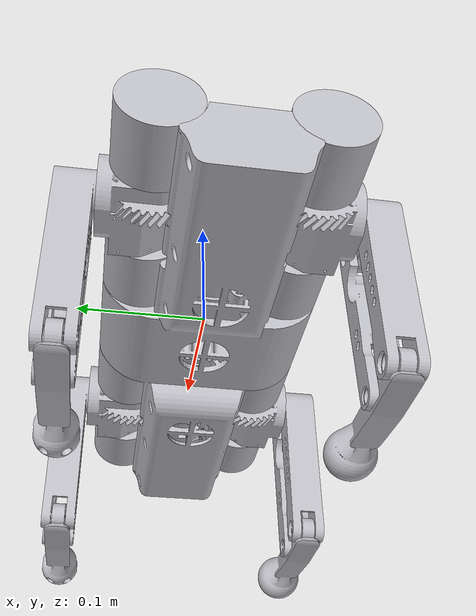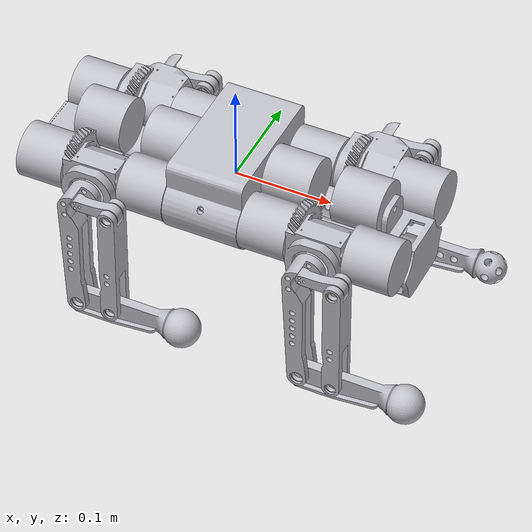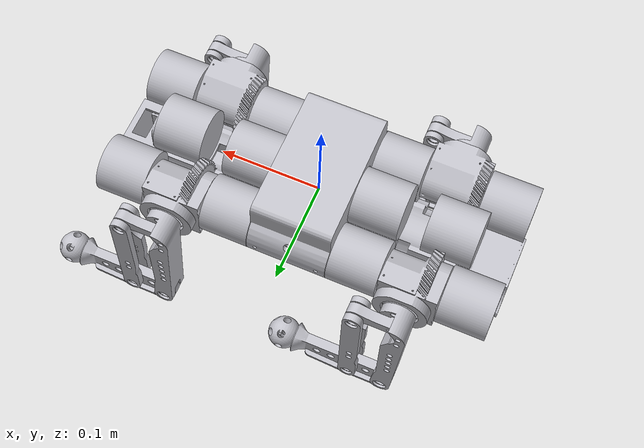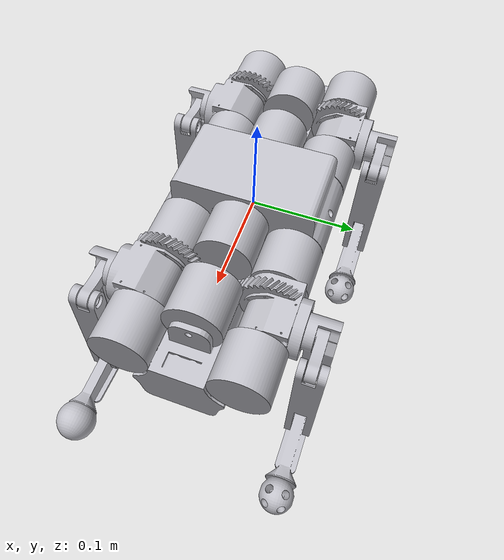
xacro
<?xml version="1.0"?>
<robot name="URDF" xmlns:xacro="http://www.ros.org/wiki/xacro">

  <xacro:include filename="/home/tomasz/dev/QuadBotNG/sim/urdf/URDF.gazebo" />
  <link name="base_link">
    <inertial>
      <origin xyz="0.00014024235087096401 -0.0003890538127367371 -0.019060892954127925" rpy="0 0 0" />
      <mass value="0.5621563017705747" />
      <inertia ixx="0.001155" iyy="0.00653" izz="0.006946" ixy="4e-06" iyz="2e-06" ixz="-2.4e-05" />
    </inertial>
    <visual>
      <origin xyz="0 0 0" rpy="0 0 0" />
      <geometry>
        <mesh filename="/home/tomasz/dev/QuadBotNG/sim/meshes/base_link.stl"
          scale="0.001 0.001 0.001" />
      </geometry>
      <material name="silver" />
    </visual>
    <collision>
      <origin xyz="0 0 0" rpy="0 0 0" />
      <geometry>
        <mesh filename="/home/tomasz/dev/QuadBotNG/sim/meshes/base_link_c.stl"
          scale="0.001 0.001 0.001" />
      </geometry>
    </collision>

  </link>

  <link name="drives_1">
    <inertial>
      <origin xyz="-0.03951765517329959 1.2719094139211486e-09 -0.012055286127708453" rpy="0 0 0" />
      <mass value="3.702587577963783" />
      <inertia ixx="0.008603" iyy="0.056229" izz="0.062893" ixy="0.0" iyz="0.0" ixz="-0.0" />
    </inertial>
    <visual>
      <origin xyz="-0.039505 -0.0 -0.018083" rpy="0 0 0" />
      <geometry>
        <mesh filename="/home/tomasz/dev/QuadBotNG/sim/meshes/drives_1.stl"
          scale="0.001 0.001 0.001" />
      </geometry>
      <material name="silver" />
    </visual>
  </link>

  <xacro:macro name="leg" params="name prefix move_x reflect_y">
    <link name="shoulder_${name}_1">
      <inertial>
        <origin xyz="0.07305887126794519 ${reflect_y * -0.006366818449876278} 1.737939750193092e-05"
          rpy="0 0 0" />
        <mass value="0.0687982302950686" />
        <inertia ixx="4.5e-05" iyy="4.9e-05" izz="5e-05" ixy="${reflect_y * 7e-06}" iyz="0.0"
          ixz="0.0" />
      </inertial>
      <visual>
        <origin xyz="-0.039006 ${reflect_y * 0.053} -0.0" rpy="0 0 0" />
        <geometry>
          <mesh filename="/home/tomasz/dev/QuadBotNG/sim/meshes/shoulder_${prefix}_1.stl"
            scale="0.001 0.001 0.001" />
        </geometry>
        <material name="silver" />
      </visual>
      <collision>
        <origin xyz="-0.039006 ${reflect_y * 0.053} -0.0" rpy="0 0 0" />
        <geometry>
          <mesh
            filename="/home/tomasz/dev/QuadBotNG/sim/meshes/shoulder_${prefix}_1_c.stl"
            scale="0.001 0.001 0.001" />
        </geometry>
      </collision>

    </link>

    <link name="arm_main_${name}_1">
      <inertial>
        <origin xyz="-0.004247618304285272 ${reflect_y *-0.014187952596475387} -0.04886253447598682"
          rpy="0 0 0" />
        <mass value="0.047281594844868054" />
        <inertia ixx="7.8e-05" iyy="7.7e-05" izz="6e-06" ixy="-0.0" iyz="${reflect_y *-2e-06}"
          ixz="2e-06" />
      </inertial>
      <visual>
        <origin xyz="-0.118706 ${reflect_y *0.0875} -0.0" rpy="0 0 0" />
        <geometry>
          <mesh filename="/home/tomasz/dev/QuadBotNG/sim/meshes/arm_main_${prefix}_1.stl"
            scale="0.001 0.001 0.001" />
        </geometry>
        <material name="silver" />
      </visual>
      <collision>
        <origin xyz="-0.118706 ${reflect_y *0.0875} -0.0" rpy="0 0 0" />
        <geometry>
          <mesh
            filename="/home/tomasz/dev/QuadBotNG/sim/meshes/arm_main_${prefix}_1_c.stl"
            scale="0.001 0.001 0.001" />
        </geometry>
      </collision>

    </link>

    <link name="arm_crank_${name}_1">
      <inertial>
        <origin xyz="0.01870365879895089 ${reflect_y *-0.01385715444565519} 9.569436468071744e-05"
          rpy="0 0 0" />
        <mass value="0.007002755420396213" />
        <inertia ixx="0.0" iyy="2e-06" izz="2e-06" ixy="0.0" iyz="0.0" ixz="-0.0" />
      </inertial>
      <visual>
        <origin xyz="-0.118706 ${reflect_y *0.0875} -0.0" rpy="0 0 0" />
        <geometry>
          <mesh filename="/home/tomasz/dev/QuadBotNG/sim/meshes/arm_crank_${prefix}_1.stl"
            scale="0.001 0.001 0.001" />
        </geometry>
        <material name="silver" />
      </visual>

    </link>

    <link name="arm_link_${name}_1">
      <inertial>
        <origin xyz="0.00114096544972489 ${reflect_y *-0.0013691619442786351} -0.05890529754921636"
          rpy="0 0 0" />
        <mass value="0.0331145638504204" />
        <inertia ixx="4.4e-05" iyy="4.3e-05" izz="4e-06" ixy="-0.0" iyz="0.0" ixz="-1e-06" />
      </inertial>
      <visual>
        <origin xyz="-0.153706 ${reflect_y *0.1026} -0.0" rpy="0 0 0" />
        <geometry>
          <mesh filename="/home/tomasz/dev/QuadBotNG/sim/meshes/arm_link_${prefix}_1.stl"
            scale="0.001 0.001 0.001" />
        </geometry>
        <material name="silver" />
      </visual>
    </link>

    <link name="arm_lower_${name}_1">
      <inertial>
        <origin xyz="0.06322127393693497 ${reflect_y *4.99720667845871e-07} -0.0019199942850988"
          rpy="0 0 0" />
        <mass value="0.03998924644154324" />
        <inertia ixx="3e-06" iyy="6e-05" izz="5.9e-05" ixy="-0.0" iyz="0.0" ixz="-2e-06" />
      </inertial>
      <visual>
        <origin xyz="-0.118702 ${reflect_y *0.1026} 0.119915" rpy="0 0 0" />
        <geometry>
          <mesh filename="/home/tomasz/dev/QuadBotNG/sim/meshes/arm_lower_${prefix}_1.stl"
            scale="0.001 0.001 0.001" />
        </geometry>
        <material name="silver" />
      </visual>
      <collision>
        <origin xyz="-0.118702 ${reflect_y *0.1026} 0.119915" rpy="0 0 0" />
        <geometry>
          <mesh
            filename="/home/tomasz/dev/QuadBotNG/sim/meshes/arm_lower_${prefix}_1_c.stl"
            scale="0.001 0.001 0.001" />
        </geometry>
        <surface>
          <contact>
            <collide_bitmask>0x08</collide_bitmask>
          </contact>
        </surface>
      </collision>
    </link>

    <joint name="base_to_shoulder_${name}" type="continuous">
      <origin xyz="${move_x} ${reflect_y * -0.053} 0.0" rpy="0 0 0" />
      <parent link="base_link" />
      <child link="shoulder_${name}_1" />
      <axis xyz="1.0 -0.0 -0.0" />
    </joint>

    <joint name="shoulder_to_main_${name}" type="continuous">
      <origin xyz="0.0797 ${reflect_y * -0.0345} 0.0" rpy="0 0 0" />
      <parent link="shoulder_${name}_1" />
      <child link="arm_main_${name}_1" />
      <axis xyz="0.0 1.0 0.0" />
    </joint>

    <joint name="shoulder_to_crank_${name}" type="continuous">
      <origin xyz="0.0797 ${reflect_y * -0.0345} 0.0" rpy="0 0 0" />
      <parent link="shoulder_${name}_1" />
      <child link="arm_crank_${name}_1" />
      <axis xyz="0.0 1.0 0.0" />
    </joint>

    <joint name="crank_to_link_${name}" type="continuous">
      <origin xyz="0.035 ${reflect_y * -0.0151} 0.0" rpy="0 0 0" />
      <parent link="arm_crank_${name}_1" />
      <child link="arm_link_${name}_1" />
      <axis xyz="0.0 -1.0 0.0" />
    </joint>

    <joint name="main_to_lower_${name}" type="continuous">
      <origin xyz="0.0 ${reflect_y * -0.0151} -0.12" rpy="0 0 0" />
      <parent link="arm_main_${name}_1" />
      <child link="arm_lower_${name}_1" />
      <axis xyz="0.0 1.0 0.0" />
    </joint>

    <transmission name="main_trans_${name}">
      <type>transmission_interface/DifferenceTransmission</type>
      <actuator name="main_motor_${name}">
        <role>actuator1</role>
        <mechanicalReduction>1.5</mechanicalReduction>
      </actuator>
      <actuator name="shoulder_motor_${name}">
        <role>actuator2</role>
        <mechanicalReduction>2.25</mechanicalReduction>
      </actuator>
    </transmission>

    <transmission name="crank_trans_${name}">
      <type>transmission_interface/DifferenceTransmission</type>
      <actuator name="crank_motor_${name}">
        <role>actuator1</role>
        <mechanicalReduction>1.5</mechanicalReduction>
      </actuator>
      <actuator name="shoulder_motor_${name}">
        <role>actuator2</role>
        <mechanicalReduction>2.25</mechanicalReduction>
      </actuator>
    </transmission>

    <transmission name="crank_trans_${name}">
      <type>transmission_interface/SimpleTransmission</type>
      <actuator name="shoulder_motor_${name}">
        <mechanicalReduction>1.5</mechanicalReduction>
      </actuator>
    </transmission>

    <gazebo>
      <joint name="link_to_lower_${name}" type="ball">
        <parent>arm_link_${name}_1</parent>
        <child>arm_lower_${name}_1</child>
        <axis>
          <xyz>0 1 0</xyz>
        </axis>
        <pose relative_to="arm_link_${name}_1">0.0 0.0 -0.12 0.0 0.0 0.0</pose>
      </joint>
    </gazebo>
  </xacro:macro>

  <xacro:leg name="RF" prefix="RF" move_x="0.039006" reflect_y="1"/>
  <xacro:leg name="LF" prefix="LF" move_x="0.039006" reflect_y="-1"/>
  <xacro:leg name="RB" prefix="RF" move_x="-0.195006" reflect_y="1"/>
  <xacro:leg name="LB" prefix="LF" move_x="-0.195006" reflect_y="-1"/>

  <joint name="base_to_drives" type="fixed">
    <origin xyz="0.039505 0.0 0.018083" rpy="0 0 0" />
    <parent link="base_link" />
    <child link="drives_1" />
  </joint>

</robot>

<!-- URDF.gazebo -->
<robot name="URDF" xmlns:xacro="http://www.ros.org/wiki/xacro" >

<xacro:property name="body_color" value="Gazebo/Silver" />

<gazebo reference="base_link">
  <material>${body_color}</material>
  <mu1>0.2</mu1>
  <mu2>0.2</mu2>
  <selfCollide>true</selfCollide>
  <gravity>true</gravity>
</gazebo>

<gazebo reference="shoulder_RF_1">
  <material>${body_color}</material>
  <mu1>0.2</mu1>
  <mu2>0.2</mu2>
  <selfCollide>true</selfCollide>
</gazebo>

<gazebo reference="arm_foot_RF_1">
  <material>${body_color}</material>
  <mu1>0.2</mu1>
  <mu2>0.2</mu2>
  <selfCollide>true</selfCollide>
</gazebo>

<gazebo reference="arm_main_RF_1">
  <material>${body_color}</material>
  <mu1>0.2</mu1>
  <mu2>0.2</mu2>
  <selfCollide>true</selfCollide>
</gazebo>

<gazebo reference="arm_crank_RF_1">
  <material>${body_color}</material>
  <mu1>0.2</mu1>
  <mu2>0.2</mu2>
  <selfCollide>true</selfCollide>
</gazebo>

<gazebo reference="arm_link_RF_1">
  <material>${body_color}</material>
  <mu1>0.2</mu1>
  <mu2>0.2</mu2>
  <selfCollide>true</selfCollide>
</gazebo>

<gazebo reference="arm_lower_RF_1">
  <material>${body_color}</material>
  <mu1>0.2</mu1>
  <mu2>0.2</mu2>
  <selfCollide>true</selfCollide>
</gazebo>

</robot>
